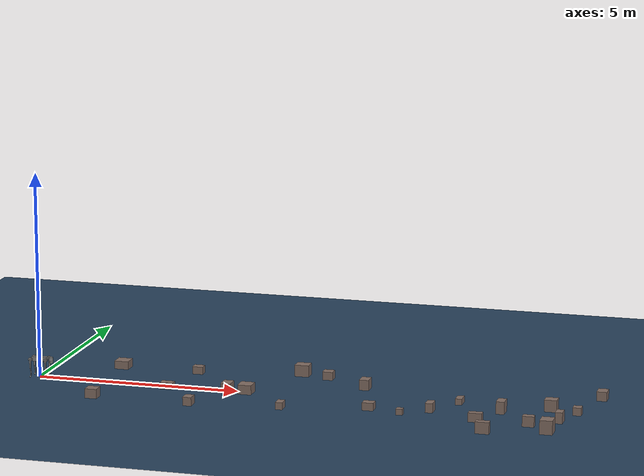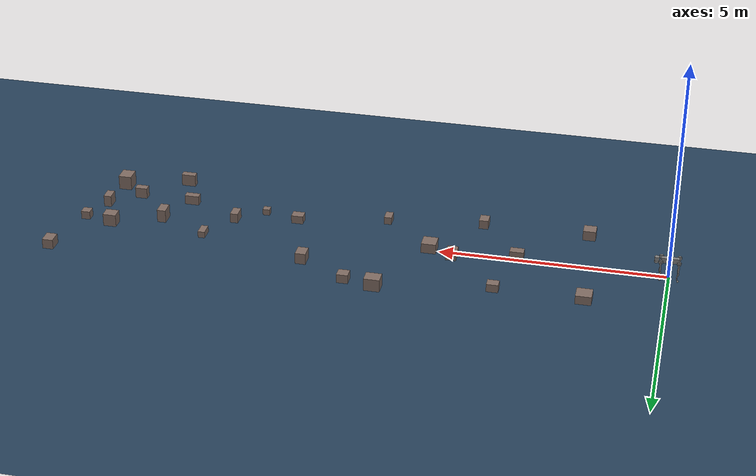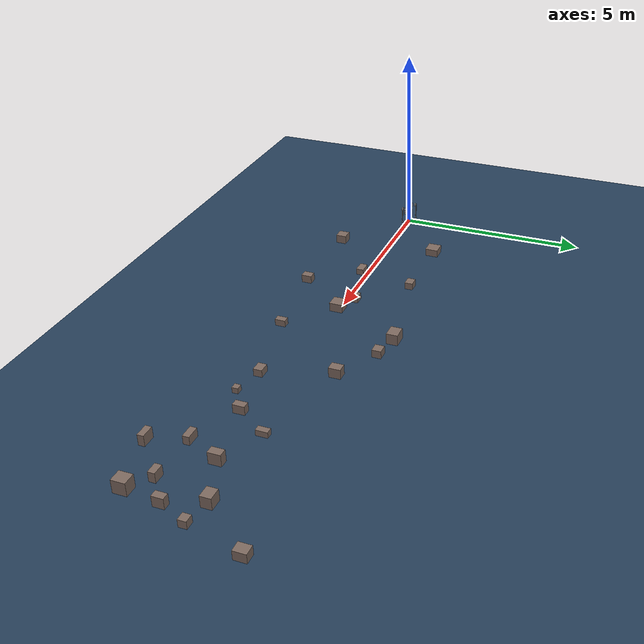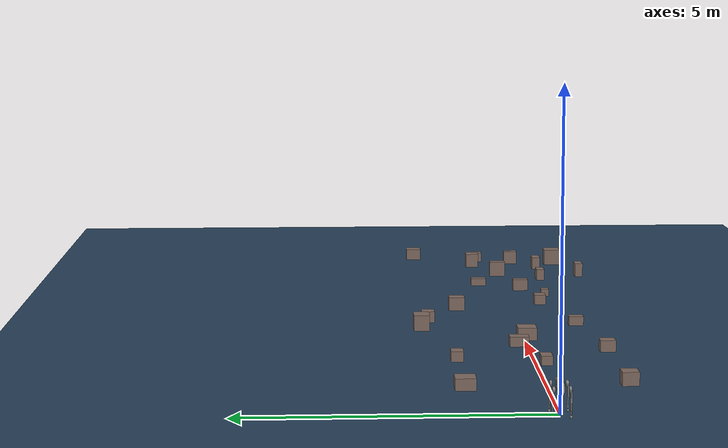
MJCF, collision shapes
<mujoco model="go2 obstacles hard">
  <include file="go2_model/go2.xml"/>
  <statistic center="0 0 0.1" extent="0.8"/>
  <visual>
    <headlight diffuse="0.6 0.6 0.6" ambient="0.3 0.3 0.3" specular="0 0 0"/>
    <rgba haze="0.15 0.25 0.35 1"/>
    <global azimuth="-130" elevation="-20"/>
  </visual>
  <asset>
    <texture type="skybox" builtin="gradient" rgb1="0.3 0.5 0.7" rgb2="0 0 0"
             width="512" height="3072"/>
    <texture type="2d" name="groundplane" builtin="checker" mark="edge"
             rgb1="0.2 0.3 0.4" rgb2="0.1 0.2 0.3"
             markrgb="0.8 0.8 0.8" width="300" height="300"/>
    <material name="groundplane" texture="groundplane" texuniform="true"
              texrepeat="5 5" reflectance="0.2"/>
    <material name="rampmat" rgba="0.45 0.45 0.55 1"/>
    <material name="stepmat" rgba="0.5 0.42 0.38 1"/>
  </asset>
  <worldbody>
    <light pos="0 0 1.5" dir="0 0 -1" directional="true"/>
    <!-- Flat field -->
    <geom name="floor" type="plane" size="0 0 0.05" material="groundplane"/>
    <geom name="obs_0" type="box" pos="9.1435 -0.8288 0.0717" size="0.0791 0.0767 0.0717" material="stepmat"/>
    <geom name="obs_1" type="box" pos="12.4531 0.3839 0.1431" size="0.1479 0.1294 0.1431" material="stepmat"/>
    <geom name="obs_2" type="box" pos="11.2902 -1.7901 0.1390" size="0.1607 0.0784 0.1390" material="stepmat"/>
    <geom name="obs_3" type="box" pos="3.6079 1.3074 0.0919" size="0.1291 0.1050 0.0919" material="stepmat"/>
    <geom name="obs_4" type="box" pos="1.8398 -1.3526 0.1147" size="0.1421 0.1397 0.1147" material="stepmat"/>
    <geom name="obs_5" type="box" pos="6.1041 1.7900 0.1428" size="0.1731 0.1436 0.1428" material="stepmat"/>
    <geom name="obs_6" type="box" pos="9.7614 -0.3999 0.1122" size="0.0885 0.1471 0.1122" material="stepmat"/>
    <geom name="obs_7" type="box" pos="5.2229 -0.0510 0.1143" size="0.1639 0.1684 0.1143" material="stepmat"/>
    <geom name="obs_8" type="box" pos="8.3584 -0.6413 0.0935" size="0.1344 0.1088 0.0935" material="stepmat"/>
    <geom name="obs_9" type="box" pos="12.1833 -0.9822 0.1258" size="0.1373 0.0834 0.1258" material="stepmat"/>
    <geom name="obs_10" type="box" pos="10.9452 -0.9383 0.1087" size="0.1626 0.0809 0.1087" material="stepmat"/>
    <geom name="obs_11" type="box" pos="3.3034 -0.1788 0.0813" size="0.1546 0.0981 0.0813" material="stepmat"/>
    <geom name="obs_12" type="box" pos="6.3546 -1.0854 0.0864" size="0.0841 0.1330 0.0864" material="stepmat"/>
    <geom name="obs_13" type="box" pos="12.8054 -0.4856 0.1329" size="0.0855 0.1379 0.1329" material="stepmat"/>
    <geom name="obs_14" type="box" pos="6.7845 1.6365 0.1013" size="0.1250 0.1175 0.1013" material="stepmat"/>
    <geom name="obs_15" type="box" pos="13.4412 1.6162 0.1129" size="0.1210 0.1508 0.1129" material="stepmat"/>
    <geom name="obs_16" type="box" pos="7.8517 1.0288 0.1270" size="0.1165 0.1484 0.1270" material="stepmat"/>
    <geom name="obs_17" type="box" pos="12.6847 -1.3862 0.1651" size="0.1479 0.1677 0.1651" material="stepmat"/>
    <geom name="obs_18" type="box" pos="1.6765 1.3091 0.0994" size="0.1731 0.1707 0.0994" material="stepmat"/>
    <geom name="obs_19" type="box" pos="11.3685 -0.0720 0.1493" size="0.0982 0.1552 0.1493" material="stepmat"/>
    <geom name="obs_20" type="box" pos="4.6936 0.1402 0.0875" size="0.1193 0.1681 0.0875" material="stepmat"/>
    <geom name="obs_21" type="box" pos="10.2841 0.4117 0.0746" size="0.0778 0.1469 0.0746" material="stepmat"/>
    <geom name="obs_22" type="box" pos="13.0927 0.2240 0.0952" size="0.1009 0.0992 0.0952" material="stepmat"/>
    <geom name="obs_23" type="box" pos="4.2104 -1.3516 0.1038" size="0.1038 0.1336 0.1038" material="stepmat"/>
  </worldbody>
</mujoco>

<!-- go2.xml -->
<mujoco model="go2">
  <compiler angle="radian" meshdir="." autolimits="true"/>

  <option cone="elliptic" impratio="100"/>

  <default>
    <default class="go2">
      <geom friction="0.6" margin="0.001" condim="1"/>
      <joint axis="0 1 0" damping="2" armature="0.01" frictionloss="0.2"/>
      <motor ctrlrange="-23.7 23.7"/>
      <default class="abduction">
        <joint axis="1 0 0" range="-1.0472 1.0472"/>
      </default>
      <default class="hip">
        <default class="front_hip">
          <joint range="-1.5708 3.4907"/>
        </default>
        <default class="back_hip">
          <joint range="-0.5236 4.5379"/>
        </default>
      </default>
      <default class="knee">
        <joint range="-2.7227 -0.83776"/>
        <motor ctrlrange="-45.43 45.43"/>
      </default>
      <default class="visual">
        <geom type="mesh" contype="0" conaffinity="0" group="2"/>
      </default>
      <default class="collision">
        <geom group="3"/>
        <default class="foot">
          <geom size="0.022" pos="-0.002 0 -0.213" priority="1" solimp="0.015 1 0.022" condim="6"
            friction="0.8 0.02 0.01"/>
        </default>
      </default>
    </default>
  </default>

  <asset>
    <material name="metal" rgba=".9 .95 .95 1"/>
    <material name="black" rgba="0 0 0 1"/>
    <material name="white" rgba="1 1 1 1"/>
    <material name="gray" rgba="0.671705 0.692426 0.774270 1"/>

    <mesh file="base_0.obj"/>
    <mesh file="base_1.obj"/>
    <mesh file="base_2.obj"/>
    <mesh file="base_3.obj"/>
    <mesh file="base_4.obj"/>
    <mesh file="hip_0.obj"/>
    <mesh file="hip_1.obj"/>
    <mesh file="thigh_0.obj"/>
    <mesh file="thigh_1.obj"/>
    <mesh file="thigh_mirror_0.obj"/>
    <mesh file="thigh_mirror_1.obj"/>
    <mesh file="calf_0.obj"/>
    <mesh file="calf_1.obj"/>
    <mesh file="calf_mirror_0.obj"/>
    <mesh file="calf_mirror_1.obj"/>
    <mesh file="foot.obj"/>
  </asset>

  <worldbody>
    <body name="base" pos="0 0 0.445" childclass="go2">
      <inertial pos="0.021112 0 -0.005366" quat="-0.000543471 0.713435 -0.00173769 0.700719" mass="6.921"
        diaginertia="0.107027 0.0980771 0.0244531"/>
      <freejoint/>
      <geom mesh="base_0" material="black" class="visual"/>
      <geom mesh="base_1" material="black" class="visual"/>
      <geom mesh="base_2" material="black" class="visual"/>
      <geom mesh="base_3" material="white" class="visual"/>
      <geom mesh="base_4" material="gray" class="visual"/>
      <geom size="0.1881 0.04675 0.057" type="box" class="collision"/>
      <geom size="0.05 0.045" pos="0.285 0 0.01" type="cylinder" class="collision"/>
      <geom size="0.047" pos="0.293 0 -0.06" class="collision"/>
      <site name="imu" pos="-0.02557 0 0.04232"/>
      <body name="FL_hip" pos="0.1934 0.0465 0">
        <inertial pos="-0.0054 0.00194 -0.000105" quat="0.497014 0.499245 0.505462 0.498237" mass="0.678"
          diaginertia="0.00088403 0.000596003 0.000479967"/>
        <joint name="FL_hip_joint" class="abduction"/>
        <geom mesh="hip_0" material="metal" class="visual"/>
        <geom mesh="hip_1" material="gray" class="visual"/>
        <geom size="0.046 0.02" pos="0 0.08 0" quat="1 1 0 0" type="cylinder" class="collision"/>
        <body name="FL_thigh" pos="0 0.0955 0">
          <inertial pos="-0.00374 -0.0223 -0.0327" quat="0.829533 0.0847635 -0.0200632 0.551623" mass="1.152"
            diaginertia="0.00594973 0.00584149 0.000878787"/>
          <joint name="FL_thigh_joint" class="front_hip"/>
          <geom mesh="thigh_0" material="metal" class="visual"/>
          <geom mesh="thigh_1" material="gray" class="visual"/>
          <geom size="0.1065 0.01225 0.017" pos="0 0 -0.1065" quat="0.707107 0 0.707107 0" type="box" class="collision"/>
          <body name="FL_calf" pos="0 0 -0.213">
            <inertial pos="0.00629595 -0.000622121 -0.141417" quat="0.710672 0.00154099 -0.00450087 0.703508"
              mass="0.241352" diaginertia="0.0014901 0.00146356 5.31397e-05"/>
            <joint name="FL_calf_joint" class="knee"/>
            <geom mesh="calf_0" material="gray" class="visual"/>
            <geom mesh="calf_1" material="black" class="visual"/>
            <geom size="0.012 0.06" pos="0.008 0 -0.06" quat="0.994493 0 -0.104807 0" type="cylinder" class="collision"/>
            <geom size="0.011 0.0325" pos="0.02 0 -0.148" quat="0.999688 0 0.0249974 0" type="cylinder" class="collision"/>
            <geom pos="0 0 -0.213" mesh="foot" class="visual" material="black"/>
            <geom name="FL" class="foot"/>
          </body>
        </body>
      </body>
      <body name="FR_hip" pos="0.1934 -0.0465 0">
        <inertial pos="-0.0054 -0.00194 -0.000105" quat="0.498237 0.505462 0.499245 0.497014" mass="0.678"
          diaginertia="0.00088403 0.000596003 0.000479967"/>
        <joint name="FR_hip_joint" class="abduction"/>
        <geom mesh="hip_0" material="metal" class="visual" quat="4.63268e-05 1 0 0"/>
        <geom mesh="hip_1" material="gray" class="visual" quat="4.63268e-05 1 0 0"/>
        <geom size="0.046 0.02" pos="0 -0.08 0" quat="0.707107 0.707107 0 0" type="cylinder" class="collision"/>
        <body name="FR_thigh" pos="0 -0.0955 0">
          <inertial pos="-0.00374 0.0223 -0.0327" quat="0.551623 -0.0200632 0.0847635 0.829533" mass="1.152"
            diaginertia="0.00594973 0.00584149 0.000878787"/>
          <joint name="FR_thigh_joint" class="front_hip"/>
          <geom mesh="thigh_mirror_0" material="metal" class="visual"/>
          <geom mesh="thigh_mirror_1" material="gray" class="visual"/>
          <geom size="0.1065 0.01225 0.017" pos="0 0 -0.1065" quat="0.707107 0 0.707107 0" type="box" class="collision"/>
          <body name="FR_calf" pos="0 0 -0.213">
            <inertial pos="0.00629595 0.000622121 -0.141417" quat="0.703508 -0.00450087 0.00154099 0.710672"
              mass="0.241352" diaginertia="0.0014901 0.00146356 5.31397e-05"/>
            <joint name="FR_calf_joint" class="knee"/>
            <geom mesh="calf_mirror_0" material="gray" class="visual"/>
            <geom mesh="calf_mirror_1" material="black" class="visual"/>
            <geom size="0.013 0.06" pos="0.01 0 -0.06" quat="0.995004 0 -0.0998334 0" type="cylinder" class="collision"/>
            <geom size="0.011 0.0325" pos="0.02 0 -0.148" quat="0.999688 0 0.0249974 0" type="cylinder" class="collision"/>
            <geom pos="0 0 -0.213" mesh="foot" class="visual" material="black"/>
            <geom name="FR" class="foot"/>
          </body>
        </body>
      </body>
      <body name="RL_hip" pos="-0.1934 0.0465 0">
        <inertial pos="0.0054 0.00194 -0.000105" quat="0.505462 0.498237 0.497014 0.499245" mass="0.678"
          diaginertia="0.00088403 0.000596003 0.000479967"/>
        <joint name="RL_hip_joint" class="abduction"/>
        <geom mesh="hip_0" material="metal" class="visual" quat="4.63268e-05 0 1 0"/>
        <geom mesh="hip_1" material="gray" class="visual" quat="4.63268e-05 0 1 0"/>
        <geom size="0.046 0.02" pos="0 0.08 0" quat="0.707107 0.707107 0 0" type="cylinder" class="collision"/>
        <body name="RL_thigh" pos="0 0.0955 0">
          <inertial pos="-0.00374 -0.0223 -0.0327" quat="0.829533 0.0847635 -0.0200632 0.551623" mass="1.152"
            diaginertia="0.00594973 0.00584149 0.000878787"/>
          <joint name="RL_thigh_joint" class="back_hip"/>
          <geom mesh="thigh_0" material="metal" class="visual"/>
          <geom mesh="thigh_1" material="gray" class="visual"/>
          <geom size="0.1065 0.01225 0.017" pos="0 0 -0.1065" quat="0.707107 0 0.707107 0" type="box" class="collision"/>
          <body name="RL_calf" pos="0 0 -0.213">
            <inertial pos="0.00629595 -0.000622121 -0.141417" quat="0.710672 0.00154099 -0.00450087 0.703508"
              mass="0.241352" diaginertia="0.0014901 0.00146356 5.31397e-05"/>
            <joint name="RL_calf_joint" class="knee"/>
            <geom mesh="calf_0" material="gray" class="visual"/>
            <geom mesh="calf_1" material="black" class="visual"/>
            <geom size="0.013 0.06" pos="0.01 0 -0.06" quat="0.995004 0 -0.0998334 0" type="cylinder" class="collision"/>
            <geom size="0.011 0.0325" pos="0.02 0 -0.148" quat="0.999688 0 0.0249974 0" type="cylinder" class="collision"/>
            <geom pos="0 0 -0.213" mesh="foot" class="visual" material="black"/>
            <geom name="RL" class="foot"/>
          </body>
        </body>
      </body>
      <body name="RR_hip" pos="-0.1934 -0.0465 0">
        <inertial pos="0.0054 -0.00194 -0.000105" quat="0.499245 0.497014 0.498237 0.505462" mass="0.678"
          diaginertia="0.00088403 0.000596003 0.000479967"/>
        <joint name="RR_hip_joint" class="abduction"/>
        <geom mesh="hip_0" material="metal" class="visual" quat="2.14617e-09 4.63268e-05 4.63268e-05 -1"/>
        <geom mesh="hip_1" material="gray" class="visual" quat="2.14617e-09 4.63268e-05 4.63268e-05 -1"/>
        <geom size="0.046 0.02" pos="0 -0.08 0" quat="0.707107 0.707107 0 0" type="cylinder" class="collision"/>
        <body name="RR_thigh" pos="0 -0.0955 0">
          <inertial pos="-0.00374 0.0223 -0.0327" quat="0.551623 -0.0200632 0.0847635 0.829533" mass="1.152"
            diaginertia="0.00594973 0.00584149 0.000878787"/>
          <joint name="RR_thigh_joint" class="back_hip"/>
          <geom mesh="thigh_mirror_0" material="metal" class="visual"/>
          <geom mesh="thigh_mirror_1" material="gray" class="visual"/>
          <geom size="0.1065 0.01225 0.017" pos="0 0 -0.1065" quat="0.707107 0 0.707107 0" type="box" class="collision"/>
          <body name="RR_calf" pos="0 0 -0.213">
            <inertial pos="0.00629595 0.000622121 -0.141417" quat="0.703508 -0.00450087 0.00154099 0.710672"
              mass="0.241352" diaginertia="0.0014901 0.00146356 5.31397e-05"/>
            <joint name="RR_calf_joint" class="knee"/>
            <geom mesh="calf_mirror_0" material="gray" class="visual"/>
            <geom mesh="calf_mirror_1" material="black" class="visual"/>
            <geom size="0.013 0.06" pos="0.01 0 -0.06" quat="0.995004 0 -0.0998334 0" type="cylinder" class="collision"/>
            <geom size="0.011 0.0325" pos="0.02 0 -0.148" quat="0.999688 0 0.0249974 0" type="cylinder" class="collision"/>
            <geom pos="0 0 -0.213" mesh="foot" class="visual" material="black"/>
            <geom name="RR" class="foot"/>
          </body>
        </body>
      </body>
    </body>
  </worldbody>

  <actuator>
    <motor class="abduction" name="FL_hip" joint="FL_hip_joint"/>
    <motor class="hip" name="FL_thigh" joint="FL_thigh_joint"/>
    <motor class="knee" name="FL_calf" joint="FL_calf_joint"/>
    <motor class="abduction" name="FR_hip" joint="FR_hip_joint"/>
    <motor class="hip" name="FR_thigh" joint="FR_thigh_joint"/>
    <motor class="knee" name="FR_calf" joint="FR_calf_joint"/>
    <motor class="abduction" name="RL_hip" joint="RL_hip_joint"/>
    <motor class="hip" name="RL_thigh" joint="RL_thigh_joint"/>
    <motor class="knee" name="RL_calf" joint="RL_calf_joint"/>
    <motor class="abduction" name="RR_hip" joint="RR_hip_joint"/>
    <motor class="hip" name="RR_thigh" joint="RR_thigh_joint"/>
    <motor class="knee" name="RR_calf" joint="RR_calf_joint"/>
  </actuator>

  <keyframe>
    <key name="home" qpos="0 0 0.27 1 0 0 0 0 0.9 -1.8 0 0.9 -1.8 0 0.9 -1.8 0 0.9 -1.8"
      ctrl="0 0.9 -1.8 0 0.9 -1.8 0 0.9 -1.8 0 0.9 -1.8"/>
  </keyframe>
</mujoco>
